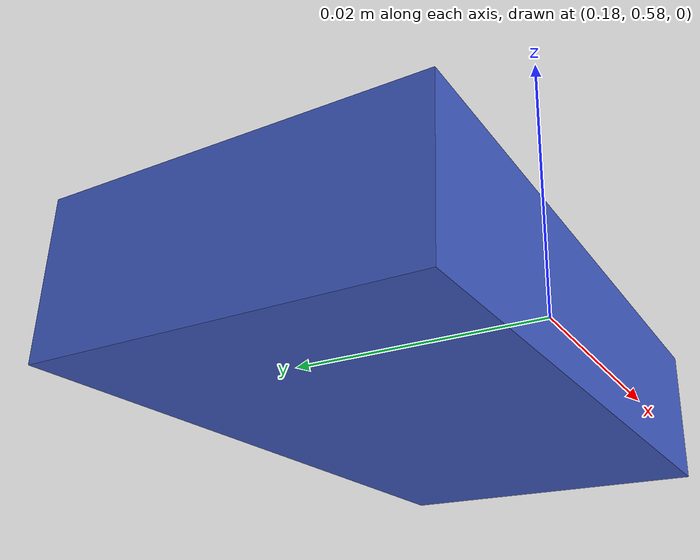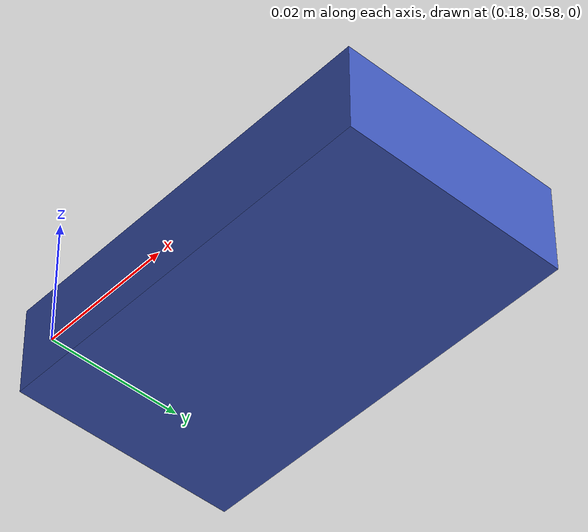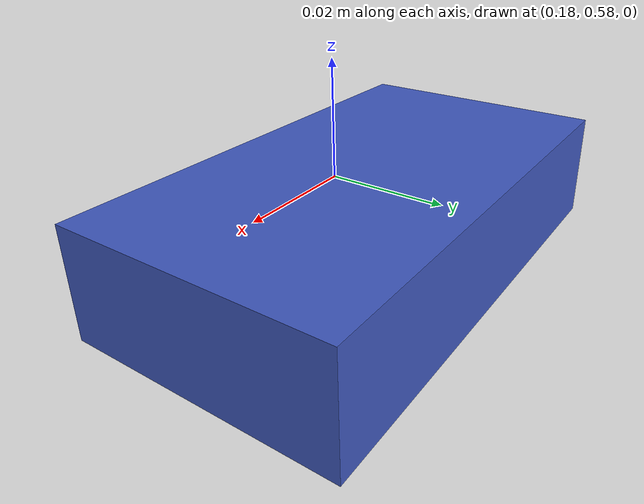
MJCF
<mujoco model="microduck_object_sock">
    <worldbody>
        <body name="sock" pos="0.2 0.6 0.007">
            <freejoint name="sock_free"/>
            <inertial pos="0 0 0" mass="0.010" diaginertia="1.13e-6 3.16e-6 3.79e-6"/>
            <geom name="sock_geom" type="box" size="0.030 0.017 0.007"
                  condim="4" friction="1.5 0.03 0.002" solref="0.01 1"
                  solimp="0.95 0.99 0.001 0.5 2" priority="2"
                  rgba="0.25 0.35 0.75 1"/>
        </body>
    </worldbody>
</mujoco>
